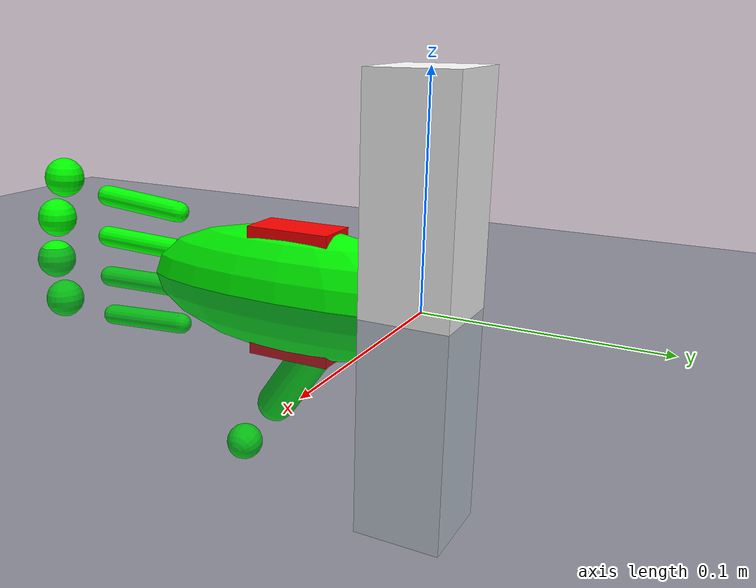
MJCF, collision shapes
<mujoco>
    <include file="inspire_hand_right.xml" />

    <visual>
        <headlight diffuse="0.6 0.6 0.6" ambient="0.1 0.1 0.1" specular="0.9 0.9 0.9" />
        <rgba haze="0.15 0.25 0.35 1" />
        <global azimuth="140" elevation="-20" />
    </visual>

    <asset>
        <texture type="skybox" builtin="gradient" rgb1="0.3 0.5 0.7" rgb2="0 0 0" width="512"
            height="3072" />
        <texture type="2d" name="groundplane" builtin="checker" mark="edge" rgb1="0.2 0.3 0.4"
            rgb2="0.1 0.2 0.3"
            markrgb="0.8 0.8 0.8" width="300" height="300" />
        <material name="groundplane" texture="groundplane" texuniform="true" texrepeat="5 5"
            reflectance="0.2" />
    </asset>

    <worldbody>
        <!-- The floor is slightly elevated to accommodate the reference mocap data for the
        humanoid_mocap task -->
        <light pos="0 0 3.5" dir="0 0 -1" directional="false" />
        <geom name="floor" size="0 0 0.05" pos="0 0 0.0" type="plane" material="groundplane"
        />
        <body name="object" pos="0 0 0.0">
            <freejoint />
            <geom name="object" type="box" density="300" size="0.02 0.02 0.1"
                rgba="1.0 1.0 1.0 1" pos="0 0 0" />
            <site name="object_site" pos="0 0 0" />
        </body>
    </worldbody>

    <!-- manually specify the contact pairs -->
    <contact>
        <pair name="right_thumb_collision_box" geom1="right_thumb_collision" geom2="object"
            solref="0.008 1"
            friction="1 1" condim="3" />
        <pair name="right_thumb_intermediate_collision_box"
            geom1="right_thumb_intermediate_collision"
            geom2="object" solref="0.008 1"
            friction="1 1" condim="3" />
        <pair name="right_index_collision_box" geom1="right_index_collision" geom2="object"
            solref="0.008 1"
            friction="1 1" condim="3" />
        <pair name="right_middle_collision_box" geom1="right_middle_collision" geom2="object"
            solref="0.008 1"
            friction="1 1" condim="3" />
        <pair name="right_ring_collision_box" geom1="right_ring_collision" geom2="object"
            solref="0.008 1"
            friction="1 1" condim="3" />
        <pair name="right_pinky_collision_box" geom1="right_pinky_collision" geom2="object"
            solref="0.008 1"
            friction="1 1" condim="3" />
        <!-- object ground contact -->
        <pair name="object_ground_contact" geom1="object" geom2="floor" solref="0.008 1"
            friction="0.01 0.01" condim="3" />
    </contact>

</mujoco>

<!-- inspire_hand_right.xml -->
<mujoco model="h1">
  <compiler angle="radian" meshdir="./meshes/" autolimits="true" />

  <option timestep="0.02"
    iterations="10" ls_iterations="50">
    <flag eulerdamp="disable" />
  </option>

  <default>
    <!-- disable all contacts and use explicit collision pairs -->
    <geom condim="1" contype="0" conaffinity="0" />
    <!-- with this setting, the response time is around 1s -->
    <position kp="300" dampratio="1.0" inheritrange="1" />
    <joint damping="0.0" armature="1.0" frictionloss="0.0" />
    <default class="mimic_right">
      <site size="0.01" type="sphere" rgba="1 0 0 1" group="0" />
    </default>
  </default>

  <asset>
    <mesh name="R_hand_base_link" content_type="model/stl" file="R_hand_base_link.STL" />
    <mesh name="Link11_R" content_type="model/stl" file="Link11_R.STL" />
    <mesh name="Link12_R" content_type="model/stl" file="Link12_R.STL" />
    <mesh name="Link13_R" content_type="model/stl" file="Link13_R.STL" />
    <mesh name="Link14_R" content_type="model/stl" file="Link14_R.STL" />
    <mesh name="Link15_R" content_type="model/stl" file="Link15_R.STL" />
    <mesh name="Link16_R" content_type="model/stl" file="Link16_R.STL" />
    <mesh name="Link17_R" content_type="model/stl" file="Link17_R.STL" />
    <mesh name="Link18_R" content_type="model/stl" file="Link18_R.STL" />
    <mesh name="Link19_R" content_type="model/stl" file="Link19_R.STL" />
    <mesh name="Link20_R" content_type="model/stl" file="Link20_R.STL" />
    <mesh name="Link21_R" content_type="model/stl" file="Link21_R.STL" />
    <mesh name="Link22_R" content_type="model/stl" file="Link22_R.STL" />
  </asset>

  <worldbody>
    <body name="right_hand_base" pos="0 0 0">
      <site name="right_palm" pos="0 -0.06 0" class="mimic_right" type="box" size="0.01 0.02 0.03" />
      <joint name="right_pos_x" type="slide" pos="0 0 0" axis="1 0 0" range="-1.0 1.0" />
      <joint name="right_pos_y" type="slide" pos="0 0 0" axis="0 1 0" range="-1.0 1.0" />
      <joint name="right_pos_z" type="slide" pos="0 0 0" axis="0 0 1" range="-1.0 1.0" />
      <!-- create rotation x, y, z joints -->
      <joint name="right_rot_x" type="hinge" pos="0 0 0" axis="1 0 0" range="-6.28 6.28" />
      <joint name="right_rot_y" type="hinge" pos="0 0 0" axis="0 1 0" range="-6.28 6.28" />
      <joint name="right_rot_z" type="hinge" pos="0 0 0" axis="0 0 1" range="-6.28 6.28" />
      <!-- add palm collision, use ellipsoid since mujoco mjx doesn't support box-cylinder
      collision -->
      <geom type="ellipsoid" name="right_palm_collision" size="0.02 0.08 0.03" pos="0 -0.06 0"
        contype="0" conaffinity="0" group="3" density="0" rgba="0 1 0 1" />
      <geom type="mesh" contype="0" conaffinity="0" group="1" density="0" rgba="0.1 0.1 0.1 1"
        mesh="R_hand_base_link" />
      <geom type="mesh" rgba="0.1 0.1 0.1 1" mesh="R_hand_base_link" />
      <body name="right_thumb_proximal_base" pos="-0.01696 -0.0691 -0.02045"
        quat="0.499998 0.5 -0.5 0.500002">
        <inertial pos="-0.0048064 0.0009382 -0.00757" quat="0.515015 0.680854 0.408023 0.323596"
          mass="0.0018869" diaginertia="8.66026e-08 6.8732e-08 4.94194e-08" />
        <joint name="right_thumb_proximal_yaw_joint" pos="0 0 0" axis="0 0 -1" range="-0.1 1.3"
          actuatorfrcrange="-1 1" />
        <geom type="mesh" contype="0" conaffinity="0" group="1" density="0" rgba="0.1 0.1 0.1 1"
          mesh="Link11_R" />
        <geom type="mesh" rgba="0.1 0.1 0.1 1" mesh="Link11_R" />
        <body name="right_thumb_proximal" pos="-0.0088099 0.010892 -0.00925"
          quat="0.0996843 0.0996847 0.700046 0.700044">
          <inertial pos="0.021932 0.012785 -0.0080386" quat="-0.254474 0.660716 0.251893 0.659733"
            mass="0.0066075" diaginertia="2.78601e-06 2.43933e-06 8.64566e-07" />
          <joint name="right_thumb_proximal_pitch_joint" pos="0 0 0" axis="0 0 1" range="0 0.5"
            actuatorfrcrange="-1 1" />
          <geom type="mesh" contype="0" conaffinity="0" group="1" density="0" rgba="0.1 0.1 0.1 1"
            mesh="Link12_R" />
          <geom type="mesh" rgba="0.1 0.1 0.1 1" mesh="Link12_R" />
          <geom name="right_thumb_intermediate_collision" type="capsule"
            fromto="-0.003140 -0.002501 -0.005 0.047924 0.035228 -0.005"
            size="0.01" contype="0" conaffinity="0" group="3" density="0"
            rgba="0 1 0 1" />
          <body name="right_thumb_intermediate" pos="0.04407 0.034553 -0.0008">
            <inertial pos="0.0095544 -0.0016282 -0.0071997"
              quat="0.636718 0.307389 -0.636802 0.307548" mass="0.0037847"
              diaginertia="4.6531e-07 4.48089e-07 2.45661e-07" />
            <joint name="right_thumb_intermediate_joint" pos="0 0 0" axis="0 0 1" range="0 0.8"
              actuatorfrcrange="-1 1" />
            <geom type="mesh" contype="0" conaffinity="0" group="1" density="0" rgba="0.1 0.1 0.1 1"
              mesh="Link13_R" />
            <geom type="mesh" rgba="0.1 0.1 0.1 1" mesh="Link13_R" />
            <body name="right_thumb_distal" pos="0.020248 0.010156 -0.0012">
              <inertial pos="0.0092888 0.0049529 -0.0060033"
                quat="-0.266294 0.655967 0.262806 0.655537" mass="0.0033441"
                diaginertia="2.0026e-07 1.95247e-07 8.1593e-08" />
              <joint name="right_thumb_distal_joint" pos="0 0 0" axis="0 0 1" range="0 1.2"
                actuatorfrcrange="-1 1" />
              <geom type="mesh" contype="0" conaffinity="0" group="1" density="0"
                rgba="0.1 0.1 0.1 1"
                mesh="Link14_R" />
              <geom type="mesh" rgba="0.1 0.1 0.1 1" mesh="Link14_R" />
              <geom name="right_thumb_collision" size="0.01" pos="0.0159104 0.0156076 -0.00599021"
                contype="0" conaffinity="0"
                group="3" density="0" rgba="0 1 0 1" />
              <site name="right_thumb_tip" pos="0.0159104 0.0156076 -0.00599021" class="mimic_right" />
            </body>
          </body>
        </body>
      </body>
      <body name="right_index_proximal" pos="0.00028533 -0.13653 -0.032268"
        quat="0.0174454 -0.999848 0 0">
        <inertial pos="0.0012259 0.011942 -0.0060001" quat="0.50867 0.49121 -0.508643 0.491172"
          mass="0.0042403" diaginertia="6.9398e-07 6.62871e-07 2.10909e-07" />
        <joint name="right_index_proximal_joint" pos="0 0 0" axis="0 0 1" range="0 1.7"
          actuatorfrcrange="-1 1" />
        <geom type="mesh" contype="0" conaffinity="0" group="1" density="0" rgba="0.1 0.1 0.1 1"
          mesh="Link15_R" />
        <geom type="mesh" rgba="0.1 0.1 0.1 1" mesh="Link15_R" />
        <geom name="right_index_intermediate_collision" type="capsule"
          fromto="-0.000437 -0.009413 -0.005 0.002139 0.032175 -0.005"
          size="0.005" contype="0" conaffinity="0" group="3" density="0"
          rgba="0 1 0 1" />
        <body name="right_index_intermediate" pos="-0.0026138 0.032026 -0.001">
          <inertial pos="0.0019697 0.019589 -0.005" quat="0.466773 0.531152 -0.466773 0.531153"
            mass="0.0045683" diaginertia="7.8179e-07 7.72465e-07 8.47212e-08" />
          <joint name="right_index_intermediate_joint" pos="0 0 0" axis="0 0 1" range="0 1.7"
            actuatorfrcrange="-1 1" />
          <geom type="mesh" contype="0" conaffinity="0" group="1" density="0" rgba="0.1 0.1 0.1 1"
            mesh="Link16_R" />
          <geom type="mesh" rgba="0.1 0.1 0.1 1" mesh="Link16_R" />
          <geom name="right_index_collision" size="0.01" pos="-0.00412053 0.0433132 -0.00501047"
            contype="0" conaffinity="0"
            group="3" density="0" rgba="0 1 0 1" />
          <site name="right_index_tip" pos="-0.00412053 0.0433132 -0.00501047" class="mimic_right" />
        </body>
      </body>
      <body name="right_middle_proximal" pos="0.00028533 -0.1371 -0.01295"
        quat="-3.67321e-06 -1 0 0">
        <inertial pos="0.001297 0.011934 -0.0060001" quat="0.510131 0.489693 -0.510105 0.489653"
          mass="0.0042403" diaginertia="6.9397e-07 6.62865e-07 2.10915e-07" />
        <joint name="right_middle_proximal_joint" pos="0 0 0" axis="0 0 1" range="0 1.7"
          actuatorfrcrange="-1 1" />
        <geom type="mesh" contype="0" conaffinity="0" group="1" density="0" rgba="0.1 0.1 0.1 1"
          mesh="Link17_R" />
        <geom type="mesh" rgba="0.1 0.1 0.1 1" mesh="Link17_R" />
        <geom name="right_middle_intermediate_collision" type="capsule"
          fromto="-0.000437 -0.009413 -0.005 0.002139 0.032175 -0.005"
          size="0.005" contype="0" conaffinity="0" group="3" density="0"
          rgba="0 1 0 1" />
        <body name="right_middle_intermediate" pos="-0.0024229 0.032041 -0.001">
          <inertial pos="0.001921 0.020796 -0.005" quat="0.466148 0.531627 -0.466229 0.531705"
            mass="0.0050396" diaginertia="9.8384e-07 9.73279e-07 9.14014e-08" />
          <joint name="right_middle_intermediate_joint" pos="0 0 0" axis="0 0 1" range="0 1.7"
            actuatorfrcrange="-1 1" />
          <geom type="mesh" contype="0" conaffinity="0" group="1" density="0" rgba="0.1 0.1 0.1 1"
            mesh="Link18_R" />
          <geom type="mesh" rgba="0.1 0.1 0.1 1" mesh="Link18_R" />
          <geom name="right_middle_collision" size="0.01" pos="-0.00426879 0.0466043 -0.00498678"
            contype="0" conaffinity="0"
            group="3" density="0" rgba="0 1 0 1" />
          <site name="right_middle_tip" pos="-0.00426879 0.0466043 -0.00498678" class="mimic_right" />
        </body>
      </body>
      <body name="right_ring_proximal" pos="0.00028533 -0.13691 0.0062872"
        quat="0.0261933 0.999657 0 0">
        <inertial pos="0.001297 0.011934 -0.0060002" quat="0.510129 0.489691 -0.510107 0.489654"
          mass="0.0042403" diaginertia="6.9397e-07 6.62865e-07 2.10915e-07" />
        <joint name="right_ring_proximal_joint" pos="0 0 0" axis="0 0 1" range="0 1.7"
          actuatorfrcrange="-1 1" />
        <geom type="mesh" contype="0" conaffinity="0" group="1" density="0" rgba="0.1 0.1 0.1 1"
          mesh="Link19_R" />
        <geom type="mesh" rgba="0.1 0.1 0.1 1" mesh="Link19_R" />
        <geom name="right_ring_intermediate_collision" type="capsule"
          fromto="-0.000437 -0.009413 -0.005 0.002139 0.032175 -0.005"
          size="0.005" contype="0" conaffinity="0" group="3" density="0"
          rgba="0 1 0 1" />
        <body name="right_ring_intermediate" pos="-0.0024229 0.032041 -0.001">
          <inertial pos="0.0021753 0.019567 -0.005" quat="0.469554 0.528695 -0.469554 0.528695"
            mass="0.0045683" diaginertia="7.8177e-07 7.72448e-07 8.4722e-08" />
          <joint name="right_ring_intermediate_joint" pos="0 0 0" axis="0 0 1" range="0 1.7"
            actuatorfrcrange="-1 1" />
          <geom type="mesh" contype="0" conaffinity="0" group="1" density="0" rgba="0.1 0.1 0.1 1"
            mesh="Link20_R" />
          <geom type="mesh" rgba="0.1 0.1 0.1 1" mesh="Link20_R" />
          <geom name="right_ring_collision" size="0.01" pos="-0.00366554 0.0433541 -0.00501047"
            contype="0" conaffinity="0"
            group="3" density="0" rgba="0 1 0 1" />
          <site name="right_ring_tip" pos="-0.00366554 0.0433541 -0.00501047" class="mimic_right" />
        </body>
      </body>
      <body name="right_pinky_proximal" pos="0.00028533 -0.13571 0.025488"
        quat="0.0523224 0.99863 0 0">
        <inertial pos="0.001297 0.011934 -0.0060001" quat="0.51013 0.489693 -0.510106 0.489653"
          mass="0.0042403" diaginertia="6.9397e-07 6.62865e-07 2.10915e-07" />
        <joint name="right_pinky_proximal_joint" pos="0 0 0" axis="0 0 1" range="0 1.7"
          actuatorfrcrange="-1 1" />
        <geom type="mesh" contype="0" conaffinity="0" group="1" density="0" rgba="0.1 0.1 0.1 1"
          mesh="Link21_R" />
        <geom type="mesh" rgba="0.1 0.1 0.1 1" mesh="Link21_R" />
        <geom name="right_pinky_intermediate_collision" type="capsule"
          fromto="-0.000437 -0.009413 -0.005 0.002139 0.032175 -0.005"
          size="0.005" contype="0" conaffinity="0" group="3" density="0"
          rgba="0 1 0 1" />
        <body name="right_pinky_intermediate" pos="-0.0024229 0.032041 -0.001">
          <inertial pos="0.0024748 0.016203 -0.0050031" quat="0.47398 0.528862 -0.469291 0.524799"
            mass="0.0035996" diaginertia="4.4867e-07 4.43723e-07 6.56538e-08" />
          <joint name="right_pinky_intermediate_joint" pos="0 0 0" axis="0 0 1" range="0 1.7"
            actuatorfrcrange="-1 1" />
          <geom type="mesh" contype="0" conaffinity="0" group="1" density="0" rgba="0.1 0.1 0.1 1"
            mesh="Link22_R" />
          <geom type="mesh" rgba="0.1 0.1 0.1 1" mesh="Link22_R" />
          <geom name="right_pinky_collision" size="0.01" pos="-0.00260734 0.0362776 -0.00501047"
            contype="0" conaffinity="0"
            group="3" density="0" rgba="0 1 0 1" />
          <site name="right_pinky_tip" pos="-0.00260734 0.0362776 -0.00501047" class="mimic_right" />
        </body>
      </body>
    </body>
  </worldbody>

  <actuator>
    <!-- Global position and rotation joints -->
    <position name="right_pos_x_position" joint="right_pos_x" />
    <position name="right_pos_y_position" joint="right_pos_y" />
    <position name="right_pos_z_position" joint="right_pos_z" />
    <position name="right_rot_x_position" joint="right_rot_x" />
    <position name="right_rot_y_position" joint="right_rot_y" />
    <position name="right_rot_z_position" joint="right_rot_z" />

    <!-- Thumb joints -->
    <position name="right_thumb_proximal_yaw_position" joint="right_thumb_proximal_yaw_joint" />
    <position name="right_thumb_proximal_pitch_position" joint="right_thumb_proximal_pitch_joint" />
    <position name="right_thumb_intermediate_position" joint="right_thumb_intermediate_joint" />
    <position name="right_thumb_distal_position" joint="right_thumb_distal_joint" />

    <!-- Index joints -->
    <position name="right_index_proximal_position" joint="right_index_proximal_joint" />
    <position name="right_index_intermediate_position" joint="right_index_intermediate_joint" />

    <!-- Middle joints -->
    <position name="right_middle_proximal_position" joint="right_middle_proximal_joint" />
    <position name="right_middle_intermediate_position" joint="right_middle_intermediate_joint" />

    <!-- Ring joints -->
    <position name="right_ring_proximal_position" joint="right_ring_proximal_joint" />
    <position name="right_ring_intermediate_position" joint="right_ring_intermediate_joint" />

    <!-- Pinky joints -->
    <position name="right_pinky_proximal_position" joint="right_pinky_proximal_joint" />
    <position name="right_pinky_intermediate_position" joint="right_pinky_intermediate_joint" />

  </actuator>
</mujoco>
